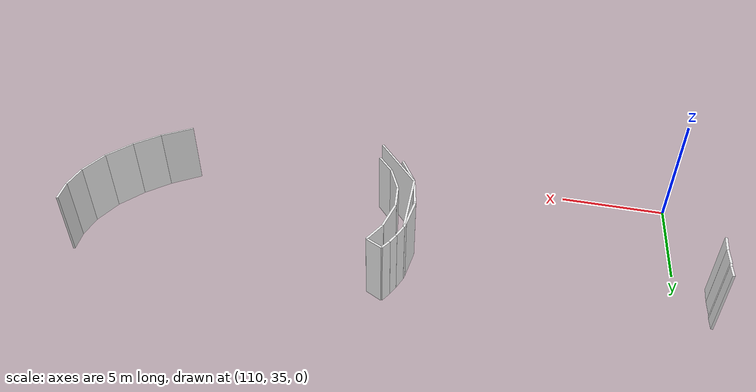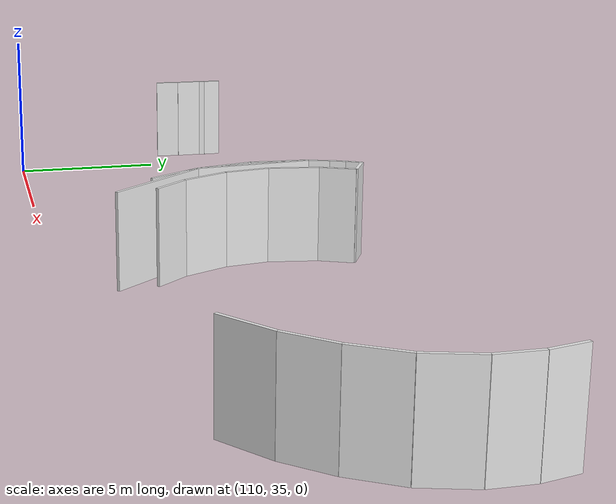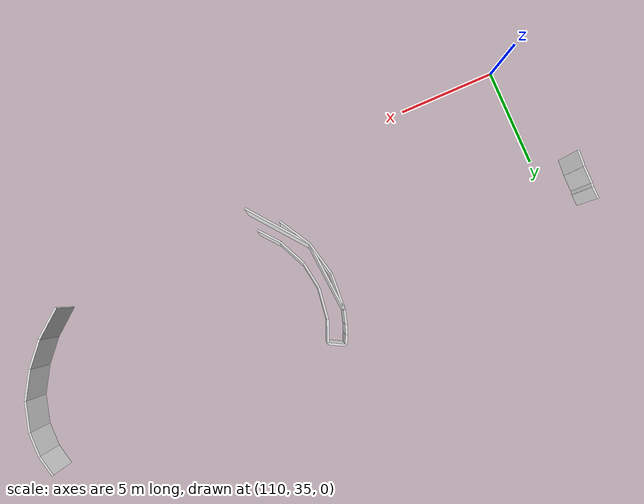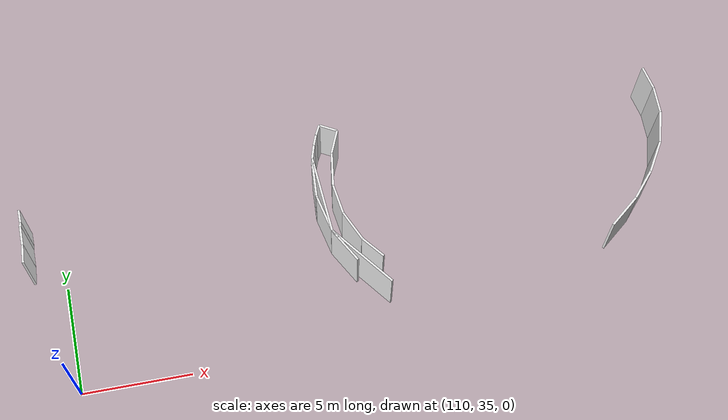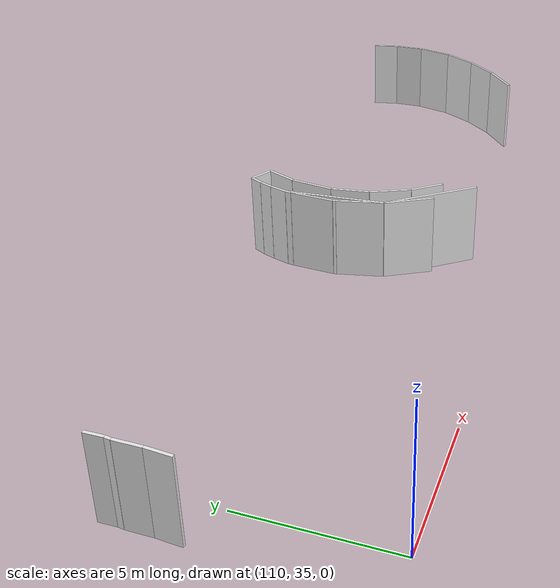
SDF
<sdf version="1.6">
 <world name="default">
  <model name="wall_123.1_43.7">
   <static>true</static>
   <pose>123.06000000002678 43.71500000008382 1.5 0 0 -1.9676144706524863</pose>
   <link name="link">
    <visual name="visual">
     <geometry><box><size>1.138463877595061 0.1 3</size></box></geometry>
     <material>
      <script><uri>file://media/materials/scripts/gazebo.material</uri><name>Gazebo/White</name></script>
     </material>
    </visual>
   </link>
  </model>
  <model name="wall_122.7_42.4">
   <static>true</static>
   <pose>122.73000000001048 42.40999999991618 1.5 0 0 -1.710898051205598</pose>
   <link name="link">
    <visual name="visual">
     <geometry><box><size>1.5754364475241969 0.1 3</size></box></geometry>
     <material>
      <script><uri>file://media/materials/scripts/gazebo.material</uri><name>Gazebo/White</name></script>
     </material>
    </visual>
   </link>
  </model>
  <model name="wall_122.7_40.9">
   <static>true</static>
   <pose>122.72000000000116 40.94499999983236 1.5 0 0 -1.4258349304067353</pose>
   <link name="link">
    <visual name="visual">
     <geometry><box><size>1.384521578131188 0.1 3</size></box></geometry>
     <material>
      <script><uri>file://media/materials/scripts/gazebo.material</uri><name>Gazebo/White</name></script>
     </material>
    </visual>
   </link>
  </model>
  <model name="wall_123.1_39.6">
   <static>true</static>
   <pose>123.13000000000466 39.574999999953434 1.5 0 0 -1.1458199052710913</pose>
   <link name="link">
    <visual name="visual">
     <geometry><box><size>1.5037619489216145 0.1 3</size></box></geometry>
     <material>
      <script><uri>file://media/materials/scripts/gazebo.material</uri><name>Gazebo/White</name></script>
     </material>
    </visual>
   </link>
  </model>
  <model name="wall_123.8_38.4">
   <static>true</static>
   <pose>123.8299999999872 38.41000000014901 1.5 0 0 -0.8884797719201485</pose>
   <link name="link">
    <visual name="visual">
     <geometry><box><size>1.2369316876372989 0.1 3</size></box></geometry>
     <material>
      <script><uri>file://media/materials/scripts/gazebo.material</uri><name>Gazebo/White</name></script>
     </material>
    </visual>
   </link>
  </model>
  <model name="wall_135.2_38.0">
   <static>true</static>
   <pose>135.15499999999884 38.03499999991618 1.5 0 0 0.6848975642669308</pose>
   <link name="link">
    <visual name="visual">
     <geometry><box><size>1.6914490827793647 0.1 3</size></box></geometry>
     <material>
      <script><uri>file://media/materials/scripts/gazebo.material</uri><name>Gazebo/White</name></script>
     </material>
    </visual>
   </link>
  </model>
  <model name="wall_136.3_39.1">
   <static>true</static>
   <pose>136.2950000000128 39.13500000000931 1.5 0 0 0.8614417228159299</pose>
   <link name="link">
    <visual name="visual">
     <geometry><box><size>1.4892279882068225 0.1 3</size></box></geometry>
     <material>
      <script><uri>file://media/materials/scripts/gazebo.material</uri><name>Gazebo/White</name></script>
     </material>
    </visual>
   </link>
  </model>
  <model name="wall_137.2_40.4">
   <static>true</static>
   <pose>137.1700000000128 40.360000000102445 1.5 0 0 1.0370881351170083</pose>
   <link name="link">
    <visual name="visual">
     <geometry><box><size>1.5332318805419543 0.1 3</size></box></geometry>
     <material>
      <script><uri>file://media/materials/scripts/gazebo.material</uri><name>Gazebo/White</name></script>
     </material>
    </visual>
   </link>
  </model>
  <model name="wall_137.8_41.7">
   <static>true</static>
   <pose>137.75500000000466 41.74500000011176 1.5 0 0 1.3080489362155228</pose>
   <link name="link">
    <visual name="visual">
     <geometry><box><size>1.501532550613227 0.1 3</size></box></geometry>
     <material>
      <script><uri>file://media/materials/scripts/gazebo.material</uri><name>Gazebo/White</name></script>
     </material>
    </visual>
   </link>
  </model>
  <model name="wall_138.0_43.1">
   <static>true</static>
   <pose>137.95000000001164 43.08500000019558 1.5 0 0 1.5707963267948966</pose>
   <link name="link">
    <visual name="visual">
     <geometry><box><size>1.2299999999813735 0.1 3</size></box></geometry>
     <material>
      <script><uri>file://media/materials/scripts/gazebo.material</uri><name>Gazebo/White</name></script>
     </material>
    </visual>
   </link>
  </model>
  <model name="wall_137.8_44.2">
   <static>true</static>
   <pose>137.8300000000163 44.235000000102445 1.5 0 0 1.791443509480411</pose>
   <link name="link">
    <visual name="visual">
     <geometry><box><size>1.0965856098074533 0.1 3</size></box></geometry>
     <material>
      <script><uri>file://media/materials/scripts/gazebo.material</uri><name>Gazebo/White</name></script>
     </material>
    </visual>
   </link>
  </model>
  <model name="wall_122.9_44.4">
   <static>true</static>
   <pose>122.90500000002794 44.44500000006519 1.5 0 0 2.641312225689999</pose>
   <link name="link">
    <visual name="visual">
     <geometry><box><size>0.8547514257024362 0.1 3</size></box></geometry>
     <material>
      <script><uri>file://media/materials/scripts/gazebo.material</uri><name>Gazebo/White</name></script>
     </material>
    </visual>
   </link>
  </model>
  <model name="wall_122.4_44.4">
   <static>true</static>
   <pose>122.41500000000815 44.425000000046566 1.5 0 0 -2.0432932626333105</pose>
   <link name="link">
    <visual name="visual">
     <geometry><box><size>0.5053711505089603 0.1 3</size></box></geometry>
     <material>
      <script><uri>file://media/materials/scripts/gazebo.material</uri><name>Gazebo/White</name></script>
     </material>
    </visual>
   </link>
  </model>
  <model name="wall_122.2_44.0">
   <static>true</static>
   <pose>122.20999999999185 43.96500000008382 1.5 0 0 -1.936543627898681</pose>
   <link name="link">
    <visual name="visual">
     <geometry><box><size>0.5032891814753054 0.1 3</size></box></geometry>
     <material>
      <script><uri>file://media/materials/scripts/gazebo.material</uri><name>Gazebo/White</name></script>
     </material>
    </visual>
   </link>
  </model>
  <model name="wall_122.0_43.4">
   <static>true</static>
   <pose>122.02499999999418 43.40999999991618 1.5 0 0 -1.8593836886367348</pose>
   <link name="link">
    <visual name="visual">
     <geometry><box><size>0.6676076693446367 0.1 3</size></box></geometry>
     <material>
      <script><uri>file://media/materials/scripts/gazebo.material</uri><name>Gazebo/White</name></script>
     </material>
    </visual>
   </link>
  </model>
  <model name="wall_108.7_42.7">
   <static>true</static>
   <pose>108.65499999999884 42.71999999997206 1.5 0 0 1.587461450424783</pose>
   <link name="link">
    <visual name="visual">
     <geometry><box><size>0.6000833276394044 0.1 3</size></box></geometry>
     <material>
      <script><uri>file://media/materials/scripts/gazebo.material</uri><name>Gazebo/White</name></script>
     </material>
    </visual>
   </link>
  </model>
  <model name="wall_108.6_40.9">
   <static>true</static>
   <pose>108.60000000000582 40.92999999993481 1.5 0 0 1.4994888620391533</pose>
   <link name="link">
    <visual name="visual">
     <geometry><box><size>0.8421401311727711 0.1 3</size></box></geometry>
     <material>
      <script><uri>file://media/materials/scripts/gazebo.material</uri><name>Gazebo/White</name></script>
     </material>
    </visual>
   </link>
  </model>
  <model name="wall_108.6_41.8">
   <static>true</static>
   <pose>108.63000000000466 41.78500000014901 1.5 0 0 1.5707963267948966</pose>
   <link name="link">
    <visual name="visual">
     <geometry><box><size>0.8700000001117587 0.1 3</size></box></geometry>
     <material>
      <script><uri>file://media/materials/scripts/gazebo.material</uri><name>Gazebo/White</name></script>
     </material>
    </visual>
   </link>
  </model>
  <model name="wall_108.6_42.3">
   <static>true</static>
   <pose>108.64499999998952 42.32000000006519 1.5 0 0 1.4219063791284725</pose>
   <link name="link">
    <visual name="visual">
     <geometry><box><size>0.20223748388077126 0.1 3</size></box></geometry>
     <material>
      <script><uri>file://media/materials/scripts/gazebo.material</uri><name>Gazebo/White</name></script>
     </material>
    </visual>
   </link>
  </model>
  <model name="wall_121.9_43.0">
   <static>true</static>
   <pose>121.91500000000815 42.97999999998137 1.5 0 0 -1.706324040804011</pose>
   <link name="link">
    <visual name="visual">
     <geometry><box><size>0.22203603284927648 0.1 3</size></box></geometry>
     <material>
      <script><uri>file://media/materials/scripts/gazebo.material</uri><name>Gazebo/White</name></script>
     </material>
    </visual>
   </link>
  </model>
  <model name="wall_121.9_42.1">
   <static>true</static>
   <pose>121.85000000000582 42.07000000006519 1.5 0 0 -1.6332151368089731</pose>
   <link name="link">
    <visual name="visual">
     <geometry><box><size>1.6031219542832693 0.1 3</size></box></geometry>
     <material>
      <script><uri>file://media/materials/scripts/gazebo.material</uri><name>Gazebo/White</name></script>
     </material>
    </visual>
   </link>
  </model>
  <model name="wall_121.8_41.2">
   <static>true</static>
   <pose>121.80999999999767 41.21999999997206 1.5 0 0 -1.373400766945016</pose>
   <link name="link">
    <visual name="visual">
     <geometry><box><size>0.10198039036683233 0.1 3</size></box></geometry>
     <material>
      <script><uri>file://media/materials/scripts/gazebo.material</uri><name>Gazebo/White</name></script>
     </material>
    </visual>
   </link>
  </model>
  <model name="wall_122.0_40.3">
   <static>true</static>
   <pose>122.00500000000466 40.34499999997206 1.5 0 0 -1.350203072831387</pose>
   <link name="link">
    <visual name="visual">
     <geometry><box><size>1.6909760494132429 0.1 3</size></box></geometry>
     <material>
      <script><uri>file://media/materials/scripts/gazebo.material</uri><name>Gazebo/White</name></script>
     </material>
    </visual>
   </link>
  </model>
  <model name="wall_122.6_38.7">
   <static>true</static>
   <pose>122.63000000000466 38.73999999999069 1.5 0 0 -1.057190322085212</pose>
   <link name="link">
    <visual name="visual">
     <geometry><box><size>1.7910890542300064 0.1 3</size></box></geometry>
     <material>
      <script><uri>file://media/materials/scripts/gazebo.material</uri><name>Gazebo/White</name></script>
     </material>
    </visual>
   </link>
  </model>
  <model name="wall_123.3_38.1">
   <static>true</static>
   <pose>123.27999999999884 38.12000000011176 1.5 0 0 2.232333811009223</pose>
   <link name="link">
    <visual name="visual">
     <geometry><box><size>3.548577179508213 0.1 3</size></box></geometry>
     <material>
      <script><uri>file://media/materials/scripts/gazebo.material</uri><name>Gazebo/White</name></script>
     </material>
    </visual>
   </link>
  </model>
  <model name="wall_122.1_41.3">
   <static>true</static>
   <pose>122.05999999999767 41.30499999993481 1.5 0 0 1.6434971027864747</pose>
   <link name="link">
    <visual name="visual">
     <geometry><box><size>3.5794552656525696 0.1 3</size></box></geometry>
     <material>
      <script><uri>file://media/materials/scripts/gazebo.material</uri><name>Gazebo/White</name></script>
     </material>
    </visual>
   </link>
  </model>
 </world>
</sdf>
